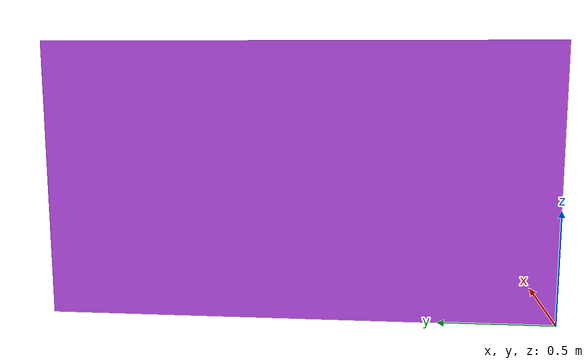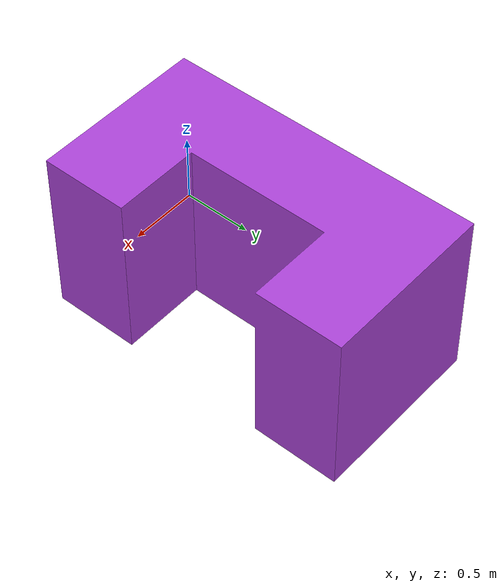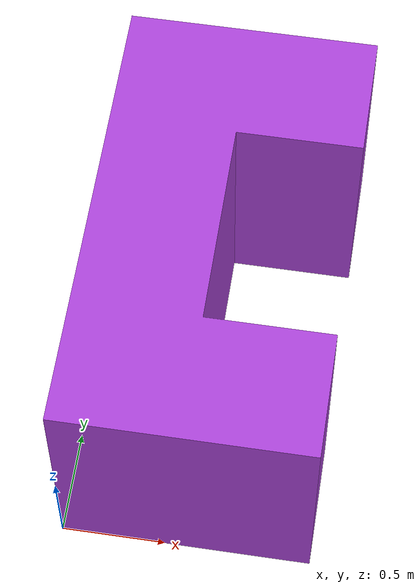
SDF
<?xml version="1.0" ?>
<sdf version="1.5">
  <model name="obstacle_03">
    <static>true</static>
    <link name="link">
      <pose>0 0 0 0 0 0</pose>
      <collision name="collision">
        <geometry>
            <mesh>
              <uri>
                model://obstacle_03/mesh/ostacolo_03.stl
              </uri>
              <scale>
                0.001 0.001 0.001
              </scale>
            </mesh>
        </geometry>
      </collision>
      <visual name="visual">
        <cast_shadows>true</cast_shadows>
        <geometry>
            <mesh>
              <uri>
                model://obstacle_03/mesh/ostacolo_03.stl
              </uri>
              <scale>
                0.001 0.001 0.001
              </scale>
            </mesh>
        </geometry>
        <material> <!-- color violet -->
          <ambient>0.6745 0.2667 0.8510 1</ambient>
          <diffuse>0.6745 0.2667 0.8510 1</diffuse>
          <specular>0 0 0 0</specular>
          <emissive>0 0 0 1</emissive>
        </material>
      </visual>
    </link>
  </model>
</sdf>
